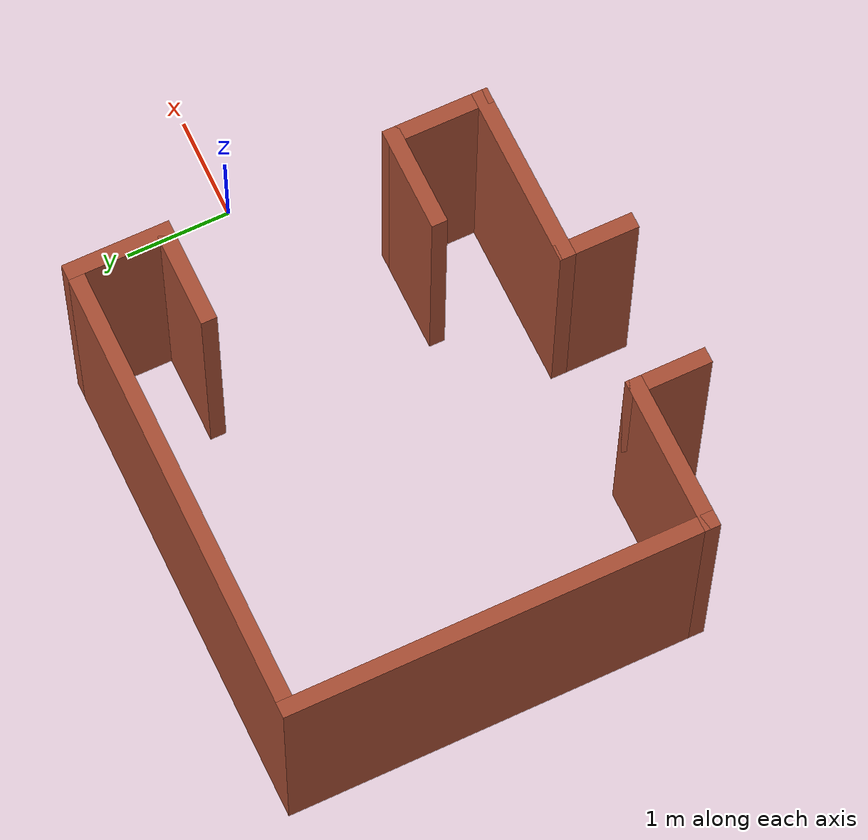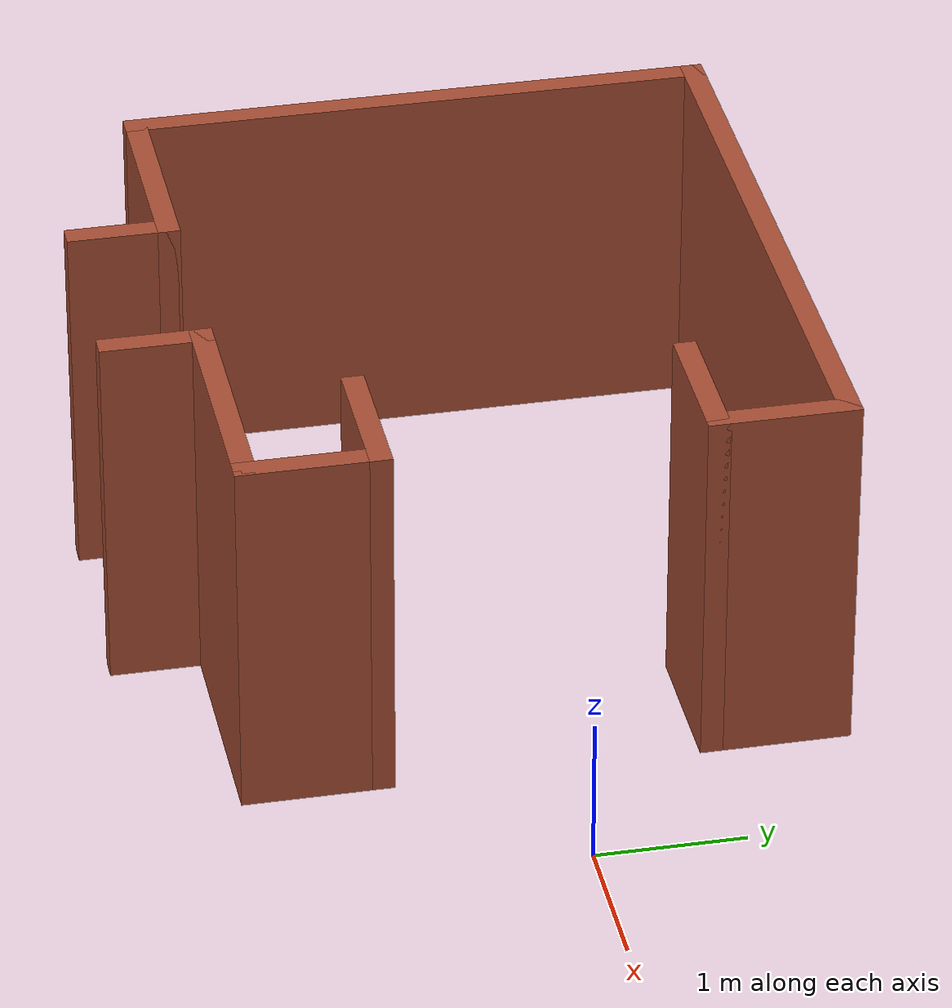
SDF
<?xml version='1.0'?>
<sdf version='1.7'>
  <model name='Test_building03'>
    <pose>-2.73087 -0.383273 0 0 -0 0</pose>
    <link name='Wall_12'>
      <collision name='Wall_12_Collision'>
        <geometry>
          <box>
            <size>4 0.15 2.5</size>
          </box>
        </geometry>
        <pose>0 0 1.25 0 -0 0</pose>
      </collision>
      <visual name='Wall_12_Visual'>
        <pose>0 0 1.25 0 -0 0</pose>
        <geometry>
          <box>
            <size>4 0.15 2.5</size>
          </box>
        </geometry>
        <material>
          <script>
            <uri>file://media/materials/scripts/gazebo.material</uri>
            <name>Gazebo/Bricks</name>
          </script>
          <ambient>1 0.764706 0.305882 1</ambient>
        </material>
        <meta>
          <layer>0</layer>
        </meta>
      </visual>
      <pose>-2.65587 0.3 0 0 -0 1.5708</pose>
    </link>
    <link name='Wall_14'>
      <collision name='Wall_14_Collision'>
        <geometry>
          <box>
            <size>1.5 0.15 2.5</size>
          </box>
        </geometry>
        <pose>0 0 1.25 0 -0 0</pose>
      </collision>
      <visual name='Wall_14_Visual'>
        <pose>0 0 1.25 0 -0 0</pose>
        <geometry>
          <box>
            <size>1.5 0.15 2.5</size>
          </box>
        </geometry>
        <material>
          <script>
            <uri>file://media/materials/scripts/gazebo.material</uri>
            <name>Gazebo/Bricks</name>
          </script>
          <ambient>1 0.764706 0.305882 1</ambient>
        </material>
        <meta>
          <layer>0</layer>
        </meta>
      </visual>
      <pose>-1.98087 -1.625 0 0 -0 0</pose>
    </link>
    <link name='Wall_18'>
      <collision name='Wall_18_Collision'>
        <geometry>
          <box>
            <size>1.75 0.15 2.5</size>
          </box>
        </geometry>
        <pose>0 0 1.25 0 -0 0</pose>
      </collision>
      <visual name='Wall_18_Visual'>
        <pose>0 0 1.25 0 -0 0</pose>
        <geometry>
          <box>
            <size>1.75 0.15 2.5</size>
          </box>
        </geometry>
        <material>
          <script>
            <uri>file://media/materials/scripts/gazebo.material</uri>
            <name>Gazebo/Bricks</name>
          </script>
          <ambient>1 0.764706 0.305882 1</ambient>
        </material>
        <meta>
          <layer>0</layer>
        </meta>
      </visual>
      <pose>0.884126 -1.625 0 0 -0 3.14159</pose>
    </link>
    <link name='Wall_24'>
      <collision name='Wall_24_Collision'>
        <geometry>
          <box>
            <size>4.5 0.15 2.5</size>
          </box>
        </geometry>
        <pose>0 0 1.25 0 -0 0</pose>
      </collision>
      <visual name='Wall_24_Visual'>
        <pose>0 0 1.25 0 -0 0</pose>
        <geometry>
          <box>
            <size>4.5 0.15 2.5</size>
          </box>
        </geometry>
        <material>
          <script>
            <uri>file://media/materials/scripts/gazebo.material</uri>
            <name>Gazebo/Bricks</name>
          </script>
          <ambient>1 0.764706 0.305882 1</ambient>
        </material>
        <meta>
          <layer>0</layer>
        </meta>
      </visual>
      <pose>-0.480874 2.225 0 0 -0 3.14159</pose>
    </link>
    <link name='Wall_31'>
      <collision name='Wall_31_Collision'>
        <geometry>
          <box>
            <size>1 0.15 2.5</size>
          </box>
        </geometry>
        <pose>0 0 1.25 0 -0 0</pose>
      </collision>
      <visual name='Wall_31_Visual'>
        <pose>0 0 1.25 0 -0 0</pose>
        <geometry>
          <box>
            <size>1 0.15 2.5</size>
          </box>
        </geometry>
        <material>
          <script>
            <uri>file://media/materials/scripts/gazebo.material</uri>
            <name>Gazebo/Bricks</name>
          </script>
          <ambient>1 0.764706 0.305882 1</ambient>
        </material>
        <meta>
          <layer>0</layer>
        </meta>
      </visual>
      <pose>1.69413 1.8 0 0 -0 -1.5708</pose>
    </link>
    <link name='Wall_32'>
      <collision name='Wall_32_Collision'>
        <geometry>
          <box>
            <size>1 0.15 2.5</size>
          </box>
        </geometry>
        <pose>0 0 1.25 0 -0 0</pose>
      </collision>
      <visual name='Wall_32_Visual'>
        <pose>0 0 1.25 0 -0 0</pose>
        <geometry>
          <box>
            <size>1 0.15 2.5</size>
          </box>
        </geometry>
        <material>
          <script>
            <uri>file://media/materials/scripts/gazebo.material</uri>
            <name>Gazebo/Bricks</name>
          </script>
          <ambient>1 0.764706 0.305882 1</ambient>
        </material>
        <meta>
          <layer>0</layer>
        </meta>
      </visual>
      <pose>1.26913 1.375 0 0 -0 3.14159</pose>
    </link>
    <link name='Wall_35'>
      <collision name='Wall_35_Collision'>
        <geometry>
          <box>
            <size>1 0.15 2.5</size>
          </box>
        </geometry>
        <pose>0 0 1.25 0 -0 0</pose>
      </collision>
      <visual name='Wall_35_Visual'>
        <pose>0 0 1.25 0 -0 0</pose>
        <geometry>
          <box>
            <size>1 0.15 2.5</size>
          </box>
        </geometry>
        <material>
          <script>
            <uri>file://media/materials/scripts/gazebo.material</uri>
            <name>Gazebo/Bricks</name>
          </script>
          <ambient>1 0.764706 0.305882 1</ambient>
        </material>
        <meta>
          <layer>0</layer>
        </meta>
      </visual>
      <pose>1.68413 -1.2 0 0 -0 1.5708</pose>
    </link>
    <link name='Wall_36'>
      <collision name='Wall_36_Collision'>
        <geometry>
          <box>
            <size>1 0.15 2.5</size>
          </box>
        </geometry>
        <pose>0 0 1.25 0 -0 0</pose>
      </collision>
      <visual name='Wall_36_Visual'>
        <pose>0 0 1.25 0 -0 0</pose>
        <geometry>
          <box>
            <size>1 0.15 2.5</size>
          </box>
        </geometry>
        <material>
          <script>
            <uri>file://media/materials/scripts/gazebo.material</uri>
            <name>Gazebo/Bricks</name>
          </script>
          <ambient>1 0.764706 0.305882 1</ambient>
        </material>
        <meta>
          <layer>0</layer>
        </meta>
      </visual>
      <pose>1.25913 -0.775 0 0 -0 3.14159</pose>
    </link>
    <link name='Wall_38'>
      <collision name='Wall_38_Collision'>
        <geometry>
          <box>
            <size>0.75 0.15 2.5</size>
          </box>
        </geometry>
        <pose>0 0 1.25 0 -0 0</pose>
      </collision>
      <visual name='Wall_38_Visual'>
        <pose>0 0 1.25 0 -0 0</pose>
        <geometry>
          <box>
            <size>0.75 0.15 2.5</size>
          </box>
        </geometry>
        <material>
          <script>
            <uri>file://media/materials/scripts/gazebo.material</uri>
            <name>Gazebo/Bricks</name>
          </script>
          <ambient>1 0.764706 0.305882 1</ambient>
        </material>
        <meta>
          <layer>0</layer>
        </meta>
      </visual>
      <pose>0.084126 -1.925 0 0 -0 -1.5708</pose>
    </link>
    <link name='Wall_40'>
      <collision name='Wall_40_Collision'>
        <geometry>
          <box>
            <size>0.75 0.15 2.5</size>
          </box>
        </geometry>
        <pose>0 0 1.25 0 -0 0</pose>
      </collision>
      <visual name='Wall_40_Visual'>
        <pose>0 0 1.25 0 -0 0</pose>
        <geometry>
          <box>
            <size>0.75 0.15 2.5</size>
          </box>
        </geometry>
        <material>
          <script>
            <uri>file://media/materials/scripts/gazebo.material</uri>
            <name>Gazebo/Bricks</name>
          </script>
          <ambient>1 0.764706 0.305882 1</ambient>
        </material>
        <meta>
          <layer>0</layer>
        </meta>
      </visual>
      <pose>-1.30587 -1.925 0 0 -0 -1.5708</pose>
    </link>
    <static>1</static>
  </model>
</sdf>
